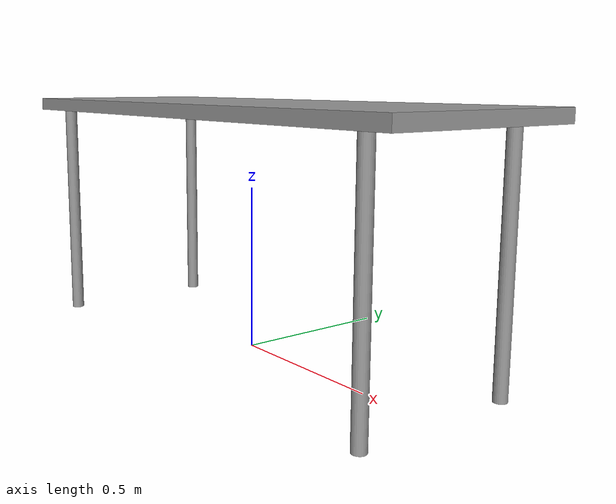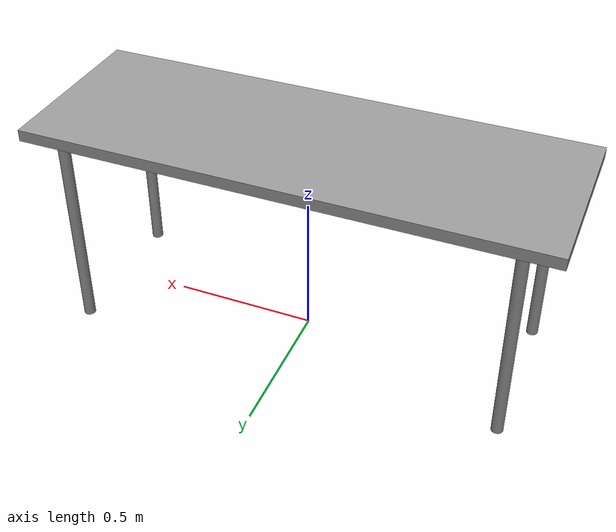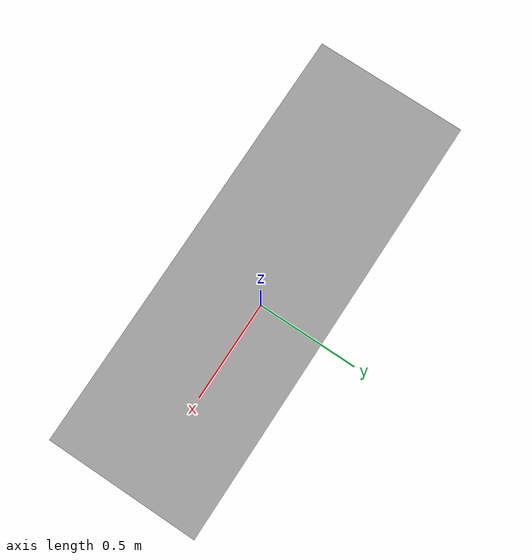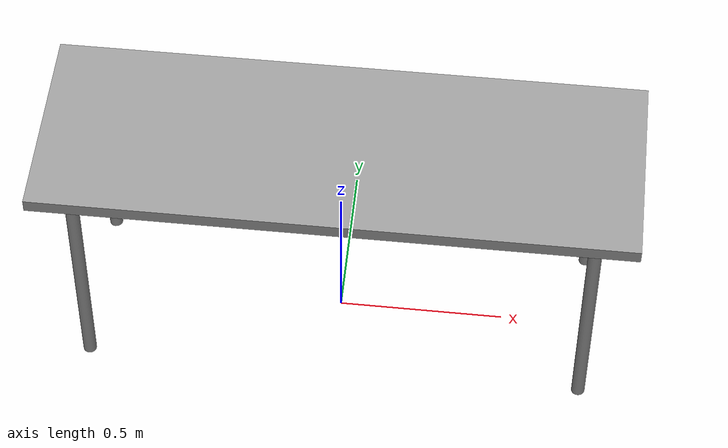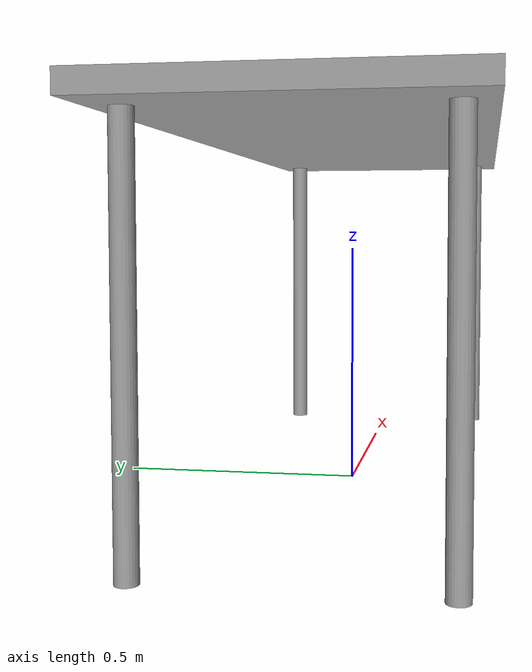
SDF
<?xml version="1.0"?>
<sdf version="1.6">
  <model name="table">
  <static>true</static>
  <link name="top_plate">
    <pose>0 0 0.74 0 0 0</pose>
    <visual name="top_plate_visual">
      <geometry>
        <box>
          <size>1.75 0.61 0.04</size>
        </box>
      </geometry>
      <material>
        <script>
          <uri>file://media/materials/scripts/gazebo.material</uri>
          <name>Gazebo/Grey</name>
        </script>
      </material>
    </visual>
    <collision name="top_plate_collision">
      <geometry>
        <box>
          <size>1.75 0.61 0.04</size>
        </box>
      </geometry>
    </collision>
  </link>
  <link name="leg1">
    <pose>0.75 0.25 0.36 0 0 1.570796</pose>
    <visual name="leg1_visual">
      <geometry>
        <cylinder>
          <radius>0.02</radius>
          <length>0.72</length>
        </cylinder>
      </geometry>
      <material>
        <script>
          <uri>file://media/materials/scripts/gazebo.material</uri>
          <name>Gazebo/Grey</name>
        </script>
      </material>
    </visual>
    <collision name="leg1_collision">
      <geometry>
        <cylinder>
          <radius>0.02</radius>
          <length>0.72</length>
        </cylinder>
      </geometry>
    </collision>
  </link>
  <link name="leg2">
    <pose>-0.75 0.25 0.36 0 0 1.570796</pose>
    <visual name="leg2_visual">
      <geometry>
        <cylinder>
          <radius>0.02</radius>
          <length>0.72</length>
        </cylinder>
      </geometry>
      <material>
        <script>
          <uri>file://media/materials/scripts/gazebo.material</uri>
          <name>Gazebo/Grey</name>
        </script>
      </material>
    </visual>
    <collision name="leg2_collision">
      <geometry>
        <cylinder>
          <radius>0.02</radius>
          <length>0.72</length>
        </cylinder>
      </geometry>
    </collision>
  </link>
  <link name="leg3">
    <pose>0.75 -0.25 0.36 0 0 1.570796</pose>
    <visual name="leg3_visual">
      <geometry>
        <cylinder>
          <radius>0.02</radius>
          <length>0.72</length>
        </cylinder>
      </geometry>
      <material>
        <script>
          <uri>file://media/materials/scripts/gazebo.material</uri>
          <name>Gazebo/Grey</name>
        </script>
      </material>
    </visual>
    <collision name="leg3_collision">
      <geometry>
        <cylinder>
          <radius>0.02</radius>
          <length>0.72</length>
        </cylinder>
      </geometry>
    </collision>
  </link>
  <link name="leg4">
    <pose>-0.75 -0.25 0.36 0 0 1.570796</pose>
    <visual name="leg4_visual">
      <geometry>
        <cylinder>
          <radius>0.02</radius>
          <length>0.72</length>
        </cylinder>
      </geometry>
      <material>
        <script>
          <uri>file://media/materials/scripts/gazebo.material</uri>
          <name>Gazebo/Grey</name>
        </script>
      </material>
    </visual>
    <collision name="leg4_collision">
      <geometry>
        <cylinder>
          <radius>0.02</radius>
          <length>0.72</length>
        </cylinder>
      </geometry>
    </collision>
  </link>
</model>

</sdf>
